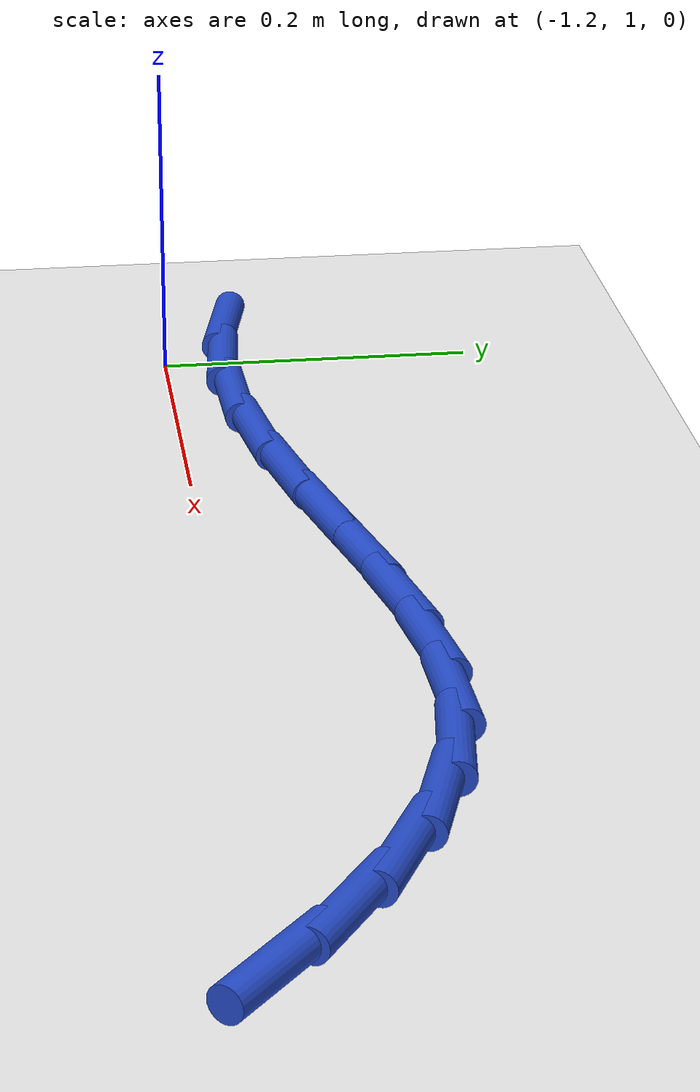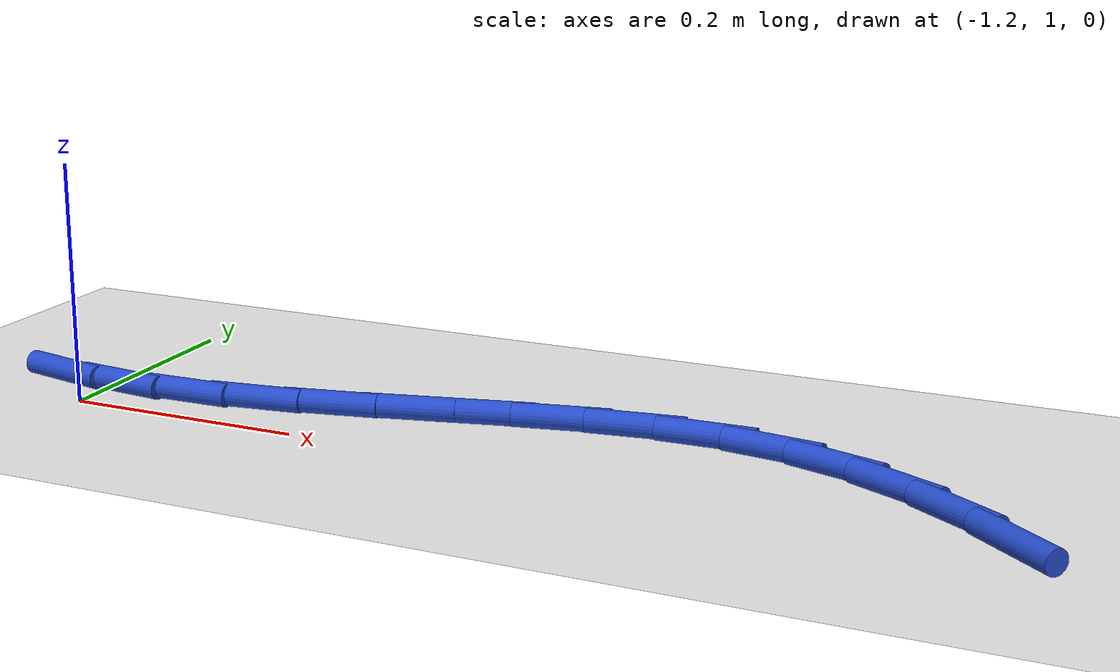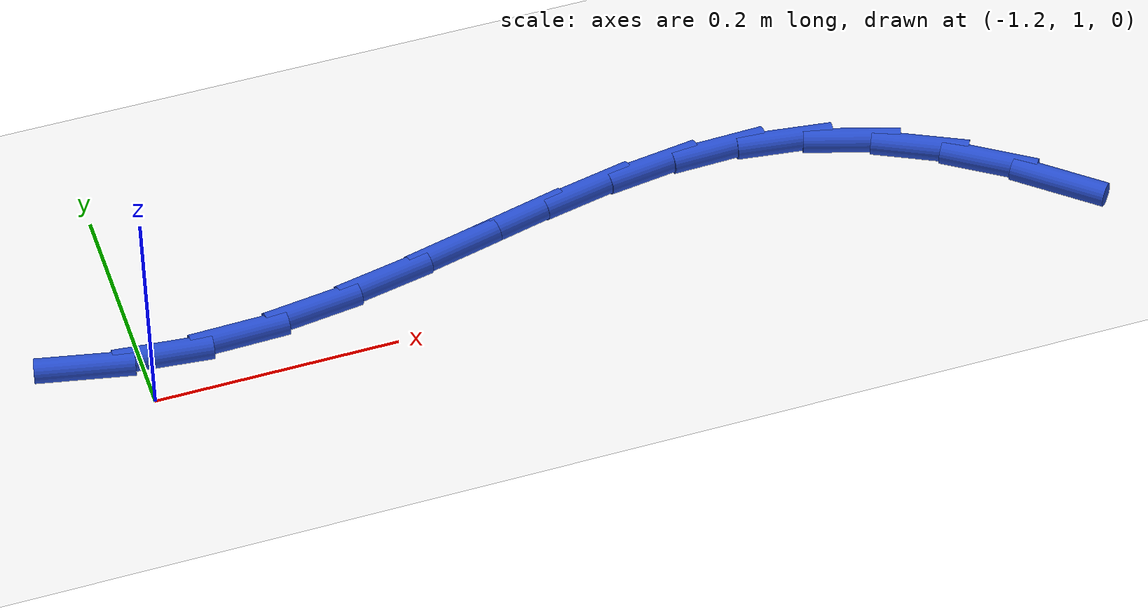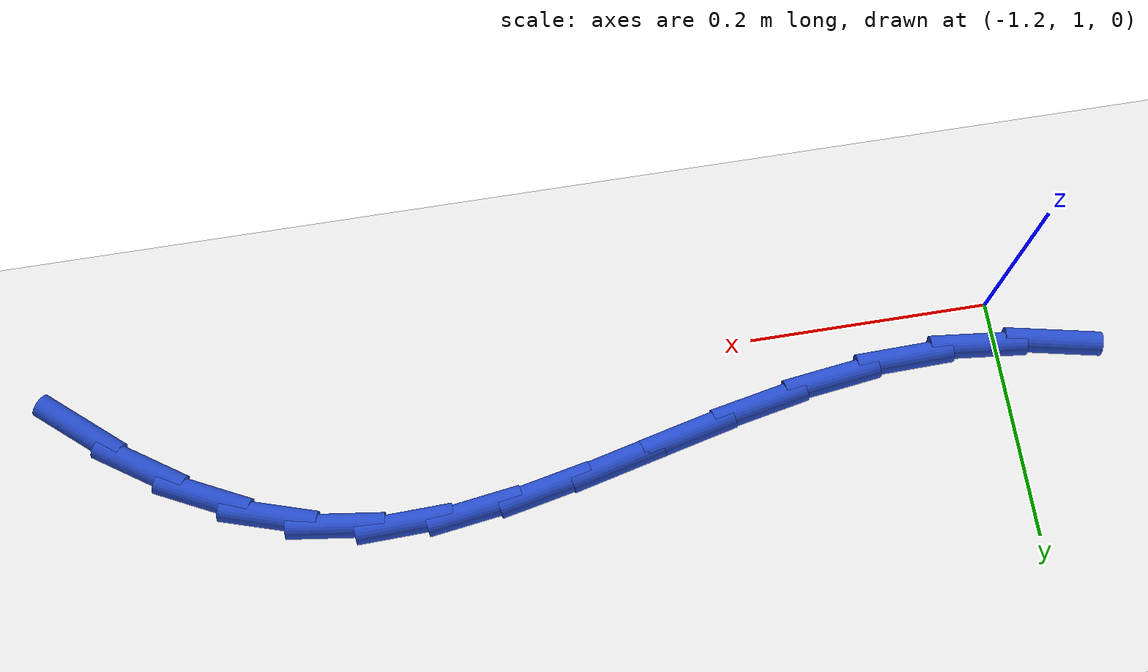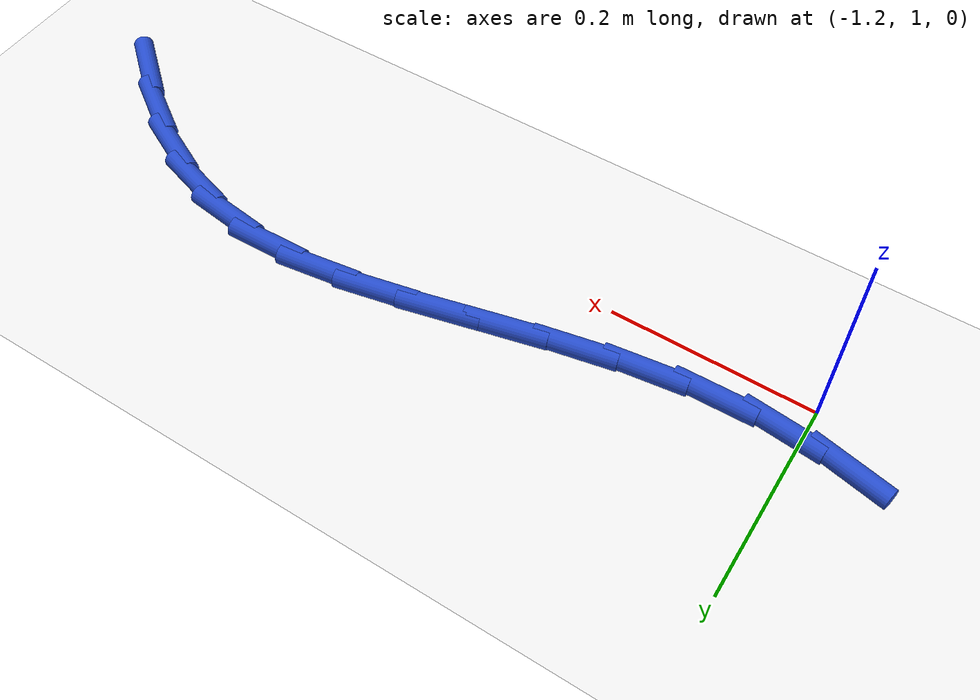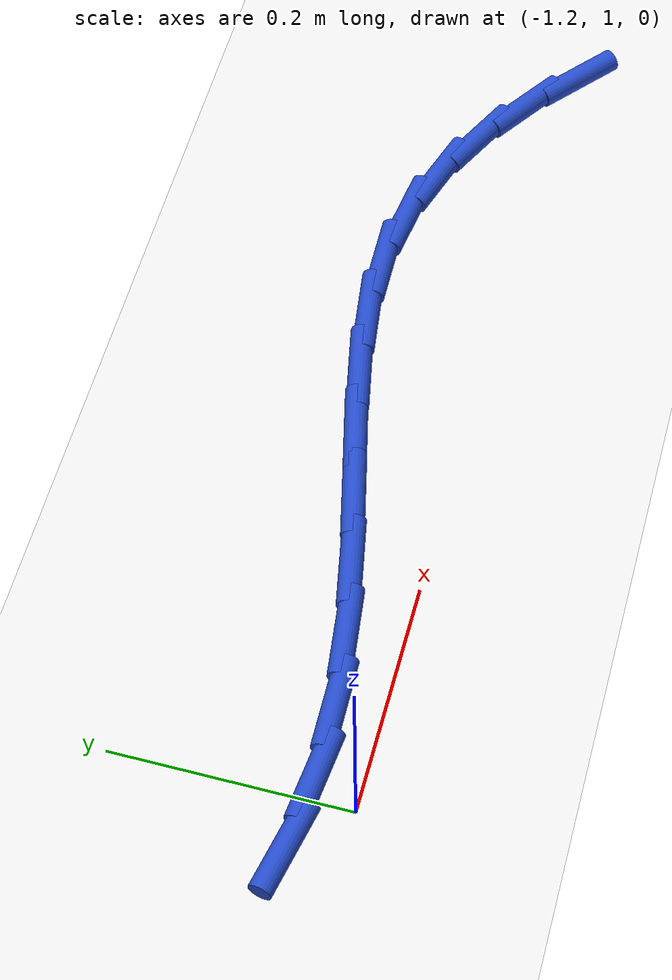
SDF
<sdf version="1.6">
 <world name="default">
  <model name="ground_plane">
   <static>1</static>
   <link name="link">
    <collision name="collision">
     <geometry><plane><normal>0 0 1</normal><size>100 100</size></plane></geometry>
     <surface><friction><ode><mu>100</mu><mu2>50</mu2></ode></friction></surface>
    </collision>
    <visual name="visual">
     <cast_shadows>0</cast_shadows>
     <geometry><plane><normal>0 0 1</normal><size>100 100</size></plane></geometry>
     <material>
      <script><uri>file://media/materials/scripts/gazebo.material</uri><name>Gazebo/WhiteGlow</name></script>
     </material>
    </visual>
   </link>
  </model>
  <model name="line">
   <link name="link_17">
    <pose>-0.44156455021519553 0.9906351354718264 0.01 0 1.57 -0.7072686922486786</pose>
    <collision name="collision">
     <geometry><cylinder><radius>0.01</radius><length>0.08</length></cylinder></geometry>
    </collision>
    <visual name="visual">
     <material>
      <script><name>Gazebo/Blue</name><uri>file://media/materials/scripts/gazebo.material</uri></script>
     </material>
     <geometry><cylinder><radius>0.01</radius><length>0.08</length></cylinder></geometry>
    </visual>
   </link>
   <link name="link_18">
    <pose>-0.48741788907249767 1.0298301388433768 0.01 0 1.57 -0.5939580904204133</pose>
    <collision name="collision">
     <geometry><cylinder><radius>0.01</radius><length>0.08</length></cylinder></geometry>
    </collision>
    <visual name="visual">
     <material>
      <script><name>Gazebo/Blue</name><uri>file://media/materials/scripts/gazebo.material</uri></script>
     </material>
     <geometry><cylinder><radius>0.01</radius><length>0.08</length></cylinder></geometry>
    </visual>
   </link>
   <link name="link_19">
    <pose>-0.5355001907406769 1.062300282055989 0.01 0 1.57 -0.4592579776236707</pose>
    <collision name="collision">
     <geometry><cylinder><radius>0.01</radius><length>0.08</length></cylinder></geometry>
    </collision>
    <visual name="visual">
     <material>
      <script><name>Gazebo/Blue</name><uri>file://media/materials/scripts/gazebo.material</uri></script>
     </material>
     <geometry><cylinder><radius>0.01</radius><length>0.08</length></cylinder></geometry>
    </visual>
   </link>
   <link name="link_20">
    <pose>-0.5858493530558456 1.0871991986475156 0.01 0 1.57 -0.30335149872643025</pose>
    <collision name="collision">
     <geometry><cylinder><radius>0.01</radius><length>0.08</length></cylinder></geometry>
    </collision>
    <visual name="visual">
     <material>
      <script><name>Gazebo/Blue</name><uri>file://media/materials/scripts/gazebo.material</uri></script>
     </material>
     <geometry><cylinder><radius>0.01</radius><length>0.08</length></cylinder></geometry>
    </visual>
   </link>
   <link name="link_21">
    <pose>-0.6385032738541161 1.1036805221558073 0.01 0 1.57 -0.13101416520587592</pose>
    <collision name="collision">
     <geometry><cylinder><radius>0.01</radius><length>0.08</length></cylinder></geometry>
    </collision>
    <visual name="visual">
     <material>
      <script><name>Gazebo/Blue</name><uri>file://media/materials/scripts/gazebo.material</uri></script>
     </material>
     <geometry><cylinder><radius>0.01</radius><length>0.08</length></cylinder></geometry>
    </visual>
   </link>
   <link name="link_22">
    <pose>-0.6934960881702625 1.1109268678147772 0.01 0 1.57 0.02726768895975483</pose>
    <collision name="collision">
     <geometry><cylinder><radius>0.01</radius><length>0.08</length></cylinder></geometry>
    </collision>
    <visual name="visual">
     <material>
      <script><name>Gazebo/Blue</name><uri>file://media/materials/scripts/gazebo.material</uri></script>
     </material>
     <geometry><cylinder><radius>0.01</radius><length>0.08</length></cylinder></geometry>
    </visual>
   </link>
   <link name="link_23">
    <pose>-0.7507001833138691 1.1093666576359493 0.01 0 1.57 0.13872950928078254</pose>
    <collision name="collision">
     <geometry><cylinder><radius>0.01</radius><length>0.08</length></cylinder></geometry>
    </collision>
    <visual name="visual">
     <material>
      <script><name>Gazebo/Blue</name><uri>file://media/materials/scripts/gazebo.material</uri></script>
     </material>
     <geometry><cylinder><radius>0.01</radius><length>0.08</length></cylinder></geometry>
    </visual>
   </link>
   <link name="link_24">
    <pose>-0.8097684160820655 1.10111917265212 0.01 0 1.57 0.2066010473947963</pose>
    <collision name="collision">
     <geometry><cylinder><radius>0.01</radius><length>0.08</length></cylinder></geometry>
    </collision>
    <visual name="visual">
     <material>
      <script><name>Gazebo/Blue</name><uri>file://media/materials/scripts/gazebo.material</uri></script>
     </material>
     <geometry><cylinder><radius>0.01</radius><length>0.08</length></cylinder></geometry>
    </visual>
   </link>
   <link name="link_25">
    <pose>-0.8703379848480511 1.0884242975746572 0.01 0 1.57 0.2369608665450059</pose>
    <collision name="collision">
     <geometry><cylinder><radius>0.01</radius><length>0.08</length></cylinder></geometry>
    </collision>
    <visual name="visual">
     <material>
      <script><name>Gazebo/Blue</name><uri>file://media/materials/scripts/gazebo.material</uri></script>
     </material>
     <geometry><cylinder><radius>0.01</radius><length>0.08</length></cylinder></geometry>
    </visual>
   </link>
   <link name="link_26">
    <pose>-0.9320460879850258 1.07352191711493 0.01 0 1.57 0.23363560457877428</pose>
    <collision name="collision">
     <geometry><cylinder><radius>0.01</radius><length>0.08</length></cylinder></geometry>
    </collision>
    <visual name="visual">
     <material>
      <script><name>Gazebo/Blue</name><uri>file://media/materials/scripts/gazebo.material</uri></script>
     </material>
     <geometry><cylinder><radius>0.01</radius><length>0.08</length></cylinder></geometry>
    </visual>
   </link>
   <link name="link_27">
    <pose>-0.9945299238661893 1.0586519159843077 0.01 0 1.57 0.19767658592293483</pose>
    <collision name="collision">
     <geometry><cylinder><radius>0.01</radius><length>0.08</length></cylinder></geometry>
    </collision>
    <visual name="visual">
     <material>
      <script><name>Gazebo/Blue</name><uri>file://media/materials/scripts/gazebo.material</uri></script>
     </material>
     <geometry><cylinder><radius>0.01</radius><length>0.08</length></cylinder></geometry>
    </visual>
   </link>
   <link name="link_28">
    <pose>-1.057426690864742 1.046054178894159 0.01 0 1.57 0.12775139245359396</pose>
    <collision name="collision">
     <geometry><cylinder><radius>0.01</radius><length>0.08</length></cylinder></geometry>
    </collision>
    <visual name="visual">
     <material>
      <script><name>Gazebo/Blue</name><uri>file://media/materials/scripts/gazebo.material</uri></script>
     </material>
     <geometry><cylinder><radius>0.01</radius><length>0.08</length></cylinder></geometry>
    </visual>
   </link>
   <link name="link_29">
    <pose>-1.120373587353883 1.0379685905558524 0.01 0 1.57 0.02138424173829769</pose>
    <collision name="collision">
     <geometry><cylinder><radius>0.01</radius><length>0.08</length></cylinder></geometry>
    </collision>
    <visual name="visual">
     <material>
      <script><name>Gazebo/Blue</name><uri>file://media/materials/scripts/gazebo.material</uri></script>
     </material>
     <geometry><cylinder><radius>0.01</radius><length>0.08</length></cylinder></geometry>
    </visual>
   </link>
   <link name="link_30">
    <pose>-1.183008457408119 1.0366289871532717 0.01 0 1.57 -0.10428266711883494</pose>
    <collision name="collision">
     <geometry><cylinder><radius>0.01</radius><length>0.08</length></cylinder></geometry>
    </collision>
    <visual name="visual">
     <material>
      <script><name>Gazebo/Blue</name><uri>file://media/materials/scripts/gazebo.material</uri></script>
     </material>
     <geometry><cylinder><radius>0.01</radius><length>0.08</length></cylinder></geometry>
    </visual>
   </link>
   <link name="link_31">
    <pose>-1.2450911111525098 1.0431267029098188 0.01 0 1.57 -0.20724293314126382</pose>
    <collision name="collision">
     <geometry><cylinder><radius>0.01</radius><length>0.08</length></cylinder></geometry>
    </collision>
    <visual name="visual">
     <material>
      <script><name>Gazebo/Blue</name><uri>file://media/materials/scripts/gazebo.material</uri></script>
     </material>
     <geometry><cylinder><radius>0.01</radius><length>0.08</length></cylinder></geometry>
    </visual>
   </link>
  </model>
 </world>
</sdf>
